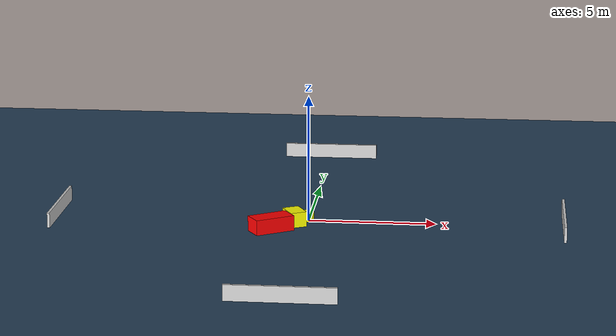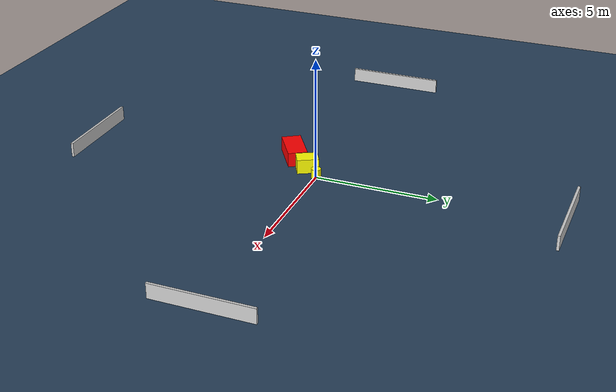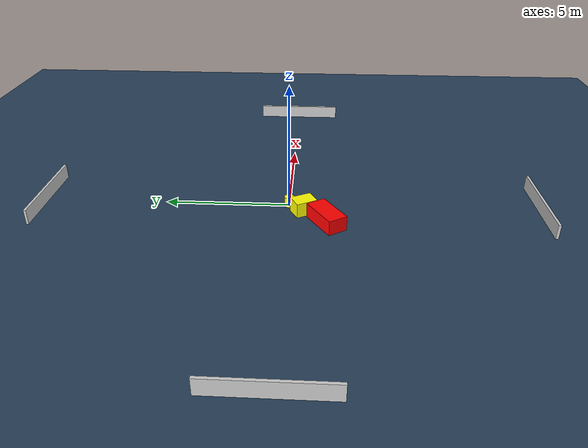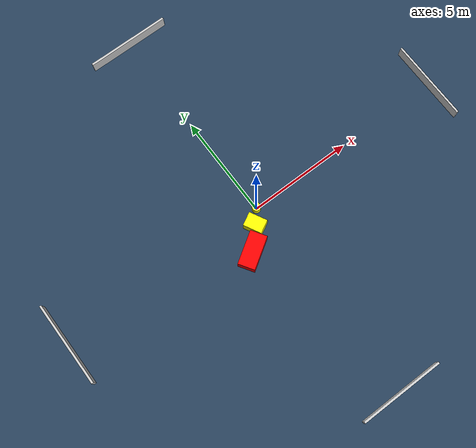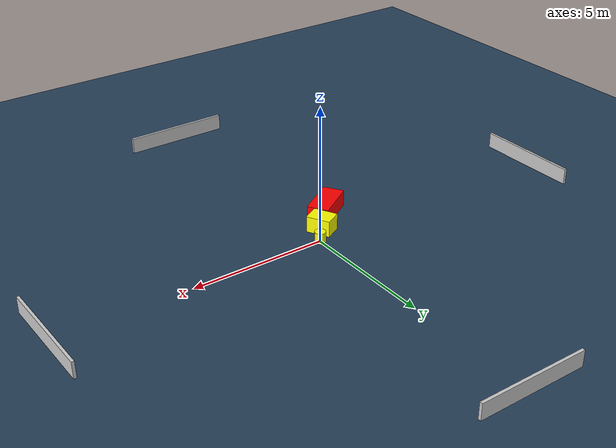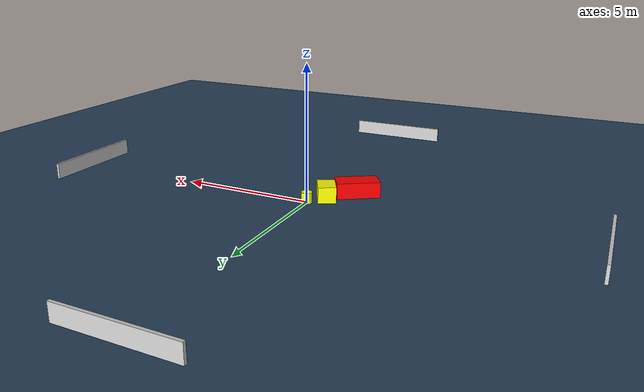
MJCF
<?xml version="1.0" ?>
<mujoco model="generated_environment">
  <option timestep="0.01" integrator="RK4" cone="elliptic"/>
  <default>
    <geom density="1"/>
  </default>
  <asset>
    <texture builtin="gradient" height="3072" name="skybox" rgb1="0.3 0.5 0.7" rgb2="0 0 0" type="skybox" width="512"/>
    <texture builtin="checker" height="300" name="groundplane" rgb1="0.2 0.3 0.4" rgb2="0.1 0.2 0.3" type="2d" width="300"/>
    <material name="groundplane" reflectance="0.2" texrepeat="5 5" texture="groundplane"/>
  </asset>
  <worldbody>
    <light dir="0 0 -1" directional="true" pos="0 0 1.5"/>
    <geom condim="3" friction="0.5 0.005 0.001" material="groundplane" name="floor" pos="0 0 0" size="0 0 0.05" type="plane"/>
    <body name="walls">
      <geom name="wall_1" condim="4" pos="-10.0 0.0 0.3" rgba="0.800000011920929 0.800000011920929 0.800000011920929 1.0" size="0.05 2.0 0.3" type="box"/>
      <geom name="wall_2" condim="4" pos="10.0 0.0 0.3" rgba="0.800000011920929 0.800000011920929 0.800000011920929 1.0" size="0.05 2.0 0.3" type="box"/>
      <geom name="wall_3" condim="4" pos="0.0 -10.0 0.3" rgba="0.800000011920929 0.800000011920929 0.800000011920929 1.0" size="2.0 0.05 0.3" type="box"/>
      <geom name="wall_4" condim="4" pos="0.0 10.0 0.3" rgba="0.800000011920929 0.800000011920929 0.800000011920929 1.0" size="2.0 0.05 0.3" type="box"/>
    </body>
    <body name="robot">
      <joint name="joint_x" type="slide" pos="0 0 0" axis="1 0 0"/>
      <joint name="joint_y" type="slide" pos="0 0 0" axis="0 1 0"/>
      <geom name="robot" type="cylinder" pos="0.0 0.0 0.2" size="0.2 0.2 0.0" mass="5.0" friction="1.0 0.005 0.0001" condim="4" rgba="1.0 1.0 0.0 1.0"/>
    </body>
    <body name="obstacle_1_movable">
      <geom name="obstacle_1_movable" condim="4" pos="-0.50317175875125 -0.5876844139166443 0.3" euler="0 0 208.1247602826631" friction="0.0 0.005 0.001" rgba="1.0 1.0 0.0 1.0" size="0.32989769125086305 0.44027380593841464 0.3" type="box" mass="0.1"/>
      <joint type="free"/>
    </body>
    <body name="obstacle_2_static">
      <geom name="obstacle_2_static" condim="4" pos="-1.3279498403149819 -1.490767121793989 0.3" euler="0 0 32.880627657616536" friction="0.0 0.005 0.001" rgba="1.0 0.0 0.0 1.0" size="0.7997203707116398 0.39809049977941546 0.3" type="box"/>
    </body>
  </worldbody>
  <actuator>
    <motor name="actuator_x" joint="joint_x" gear="1" ctrlrange="-1 1"/>
    <motor name="actuator_y" joint="joint_y" gear="1" ctrlrange="-1 1"/>
  </actuator>
</mujoco>
